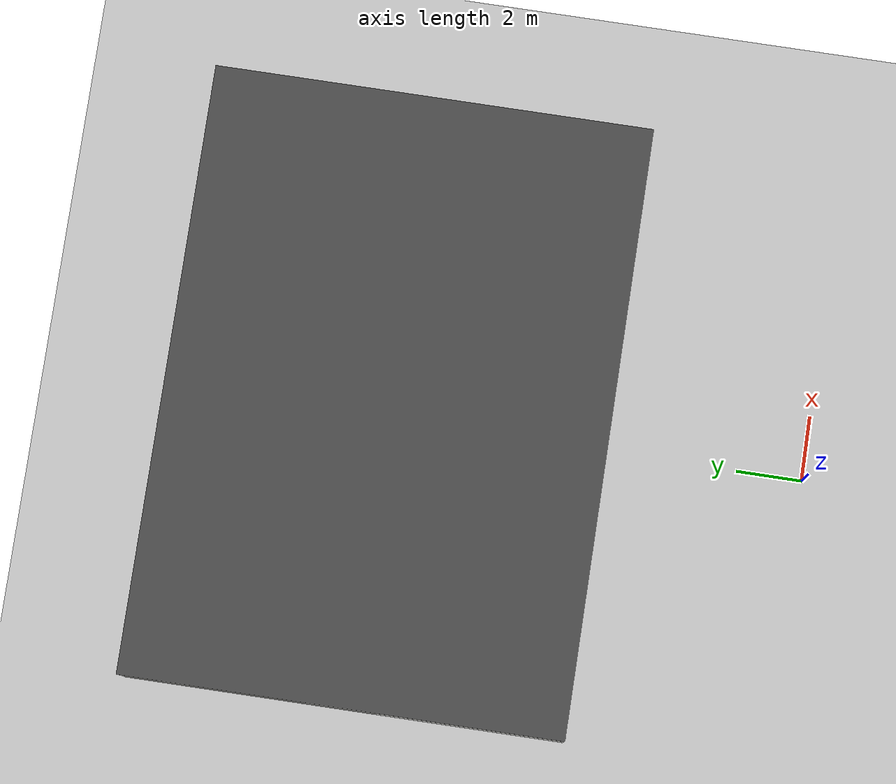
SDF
<sdf version="1.6">
 <world name="default">
  <model name="ground_plane">
   <static>1</static>
   <link name="link">
    <collision name="collision">
     <geometry><plane><normal>0 0 1</normal><size>100 100</size></plane></geometry>
     <surface>
      <contact><collide_bitmask>65535</collide_bitmask></contact>
      <friction><ode><mu>100</mu><mu2>50</mu2></ode></friction>
     </surface>
    </collision>
    <visual name="visual">
     <cast_shadows>0</cast_shadows>
     <geometry><plane><normal>0 0 1</normal><size>100 100</size></plane></geometry>
     <material>
      <script><uri>file://media/materials/scripts/gazebo.material</uri><name>Gazebo/Grey</name></script>
     </material>
    </visual>
   </link>
  </model>
  <model name="asphalt_plane">
   <static>1</static>
   <link name="link">
    <collision name="collision"><geometry><box><size>18.0246 12.9845 0.1</size></box></geometry></collision>
    <visual name="visual">
     <cast_shadows>0</cast_shadows>
     <geometry><box><size>18.0246 12.9845 0.1</size></box></geometry>
     <material>
      <script>
       <uri>model://asphalt_plane/materials/scripts</uri>
       <uri>model://asphalt_plane/materials/textures</uri>
       <name>vrc/asphalt</name>
      </script>
     </material>
    </visual>
   </link>
   <pose>0.009253 12.617 5.05625 0 -0 0</pose>
  </model>
  <model name="Indoor_Scenario1">
   <pose>0.016123 12.6195 0 0 -0 0</pose>
   <link name="Wall_55">
    <pose>-8.925 -0 2.5 0 -0 1.5708</pose>
    <visual name="Wall_55_Visual_0">
     <pose>-3.7021 0 1.25 0 -0 0</pose>
     <geometry><box><size>5.59579 0.15 2.5</size></box></geometry>
     <material>
      <script><uri>file://media/materials/scripts/gazebo.material</uri><name>Gazebo/CeilingTiled</name></script>
      <ambient>0.647059 0.505882 0.305882 1</ambient>
     </material>
     <meta><layer>1</layer></meta>
    </visual>
    <collision name="Wall_55_Collision_0">
     <geometry><box><size>5.59579 0.15 2.5</size></box></geometry>
     <pose>-3.7021 0 1.25 0 -0 0</pose>
    </collision>
    <visual name="Wall_55_Visual_1">
     <pose>2.7979 0 0.45 0 -0 0</pose>
     <geometry><box><size>7.40421 0.15 0.9</size></box></geometry>
     <material>
      <script><uri>file://media/materials/scripts/gazebo.material</uri><name>Gazebo/CeilingTiled</name></script>
      <ambient>0.647059 0.505882 0.305882 1</ambient>
     </material>
     <meta><layer>1</layer></meta>
    </visual>
    <collision name="Wall_55_Collision_1">
     <geometry><box><size>7.40421 0.15 0.9</size></box></geometry>
     <pose>2.7979 0 0.45 0 -0 0</pose>
    </collision>
    <visual name="Wall_55_Visual_2">
     <pose>2.80473 0 1.7 0 -0 0</pose>
     <geometry><box><size>3.32387 0.15 1.6</size></box></geometry>
     <material>
      <script><uri>file://media/materials/scripts/gazebo.material</uri><name>Gazebo/CeilingTiled</name></script>
      <ambient>0.647059 0.505882 0.305882 1</ambient>
     </material>
     <meta><layer>1</layer></meta>
    </visual>
    <collision name="Wall_55_Collision_2">
     <geometry><box><size>3.32387 0.15 1.6</size></box></geometry>
     <pose>2.80473 0 1.7 0 -0 0</pose>
    </collision>
    <visual name="Wall_55_Visual_3">
     <pose>5.48333 0 1.05 0 -0 0</pose>
     <geometry><box><size>2.03333 0.15 0.3</size></box></geometry>
     <material>
      <script><uri>file://media/materials/scripts/gazebo.material</uri><name>Gazebo/CeilingTiled</name></script>
      <ambient>0.647059 0.505882 0.305882 1</ambient>
     </material>
     <meta><layer>1</layer></meta>
    </visual>
    <collision name="Wall_55_Collision_3">
     <geometry><box><size>2.03333 0.15 0.3</size></box></geometry>
     <pose>5.48333 0 1.05 0 -0 0</pose>
    </collision>
    <visual name="Wall_55_Visual_4">
     <pose>5.98333 0 1.85 0 -0 0</pose>
     <geometry><box><size>1.03333 0.15 1.3</size></box></geometry>
     <material>
      <script><uri>file://media/materials/scripts/gazebo.material</uri><name>Gazebo/CeilingTiled</name></script>
      <ambient>0.647059 0.505882 0.305882 1</ambient>
     </material>
     <meta><layer>1</layer></meta>
    </visual>
    <collision name="Wall_55_Collision_4">
     <geometry><box><size>1.03333 0.15 1.3</size></box></geometry>
     <pose>5.98333 0 1.85 0 -0 0</pose>
    </collision>
    <visual name="Wall_55_Visual_5">
     <pose>4.96667 0 2.25 0 -0 0</pose>
     <geometry><box><size>1 0.15 0.5</size></box></geometry>
     <material>
      <script><uri>file://media/materials/scripts/gazebo.material</uri><name>Gazebo/CeilingTiled</name></script>
      <ambient>0.647059 0.505882 0.305882 1</ambient>
     </material>
     <meta><layer>1</layer></meta>
    </visual>
    <collision name="Wall_55_Collision_5">
     <geometry><box><size>1 0.15 0.5</size></box></geometry>
     <pose>4.96667 0 2.25 0 -0 0</pose>
    </collision>
    <visual name="Wall_55_Visual_6">
     <pose>0.119295 0 2.3 0 -0 0</pose>
     <geometry><box><size>2.047 0.15 0.4</size></box></geometry>
     <material>
      <script><uri>file://media/materials/scripts/gazebo.material</uri><name>Gazebo/CeilingTiled</name></script>
      <ambient>0.647059 0.505882 0.305882 1</ambient>
     </material>
     <meta><layer>1</layer></meta>
    </visual>
    <collision name="Wall_55_Collision_6">
     <geometry><box><size>2.047 0.15 0.4</size></box></geometry>
     <pose>0.119295 0 2.3 0 -0 0</pose>
    </collision>
   </link>
   <static>1</static>
  </model>
 </world>
</sdf>
